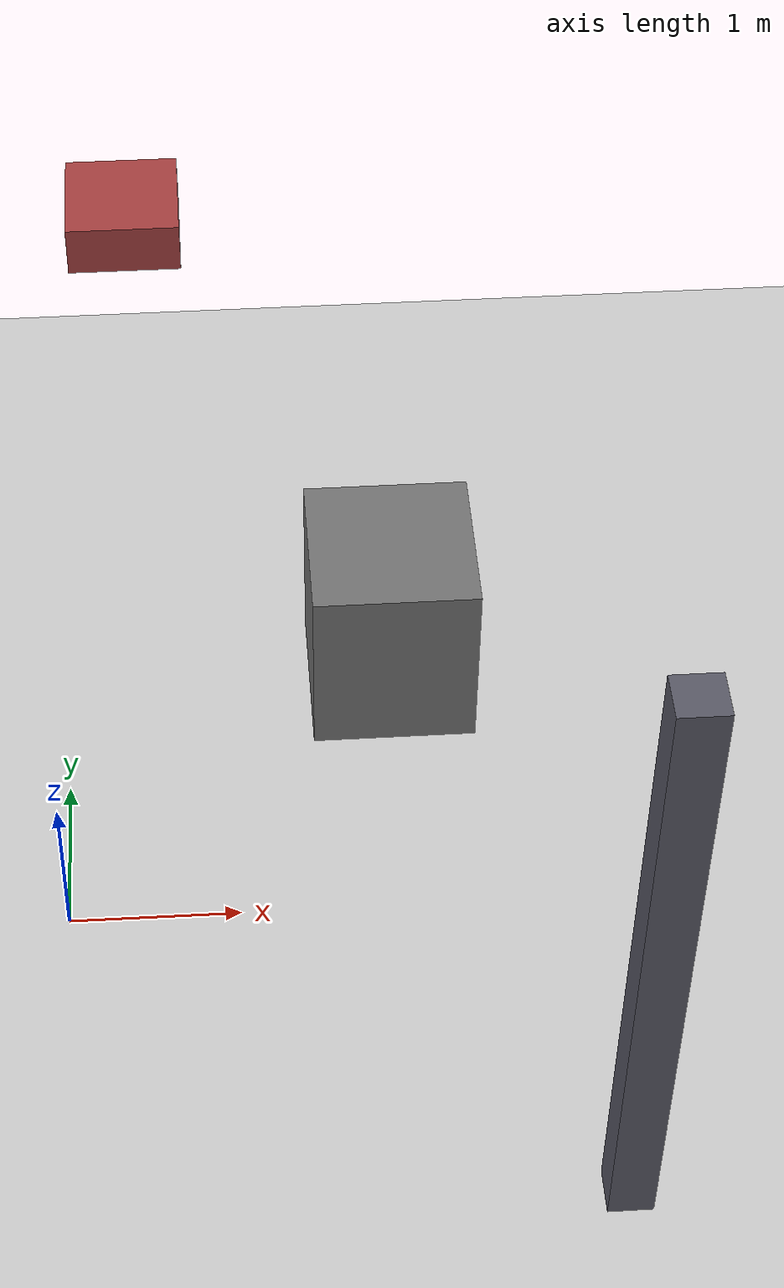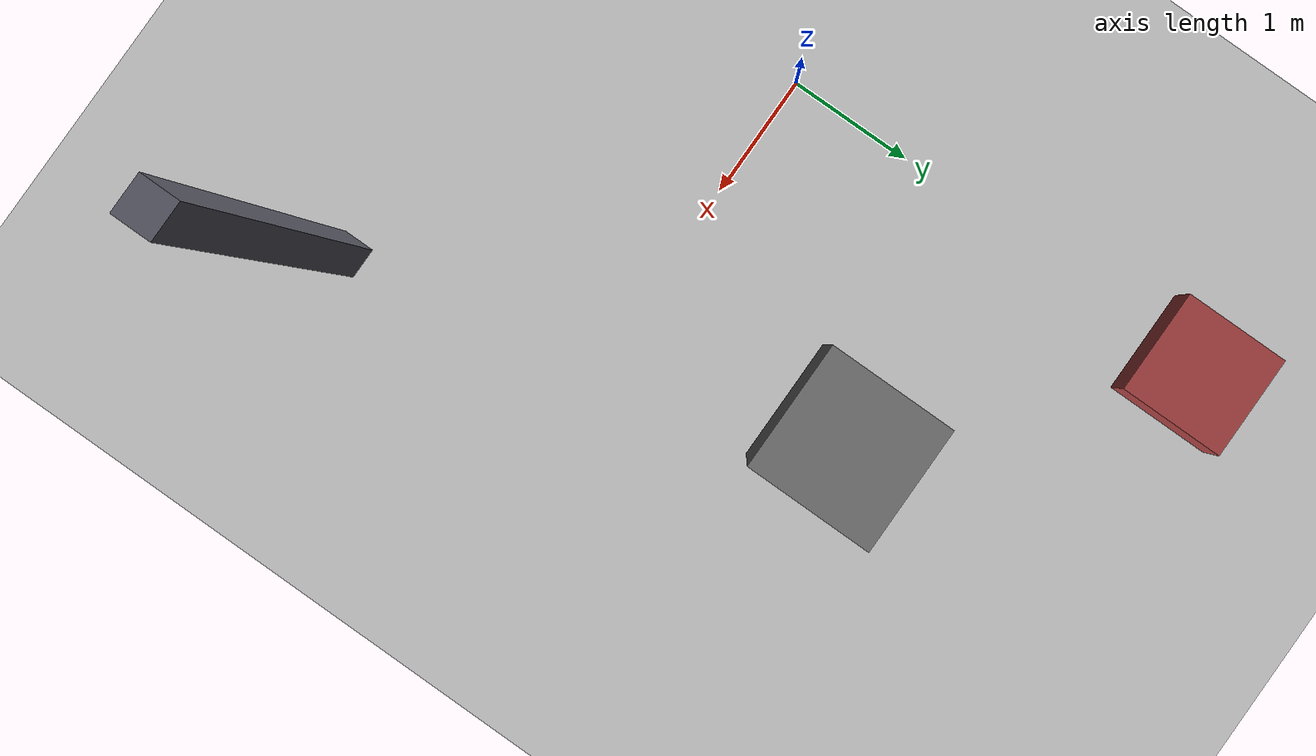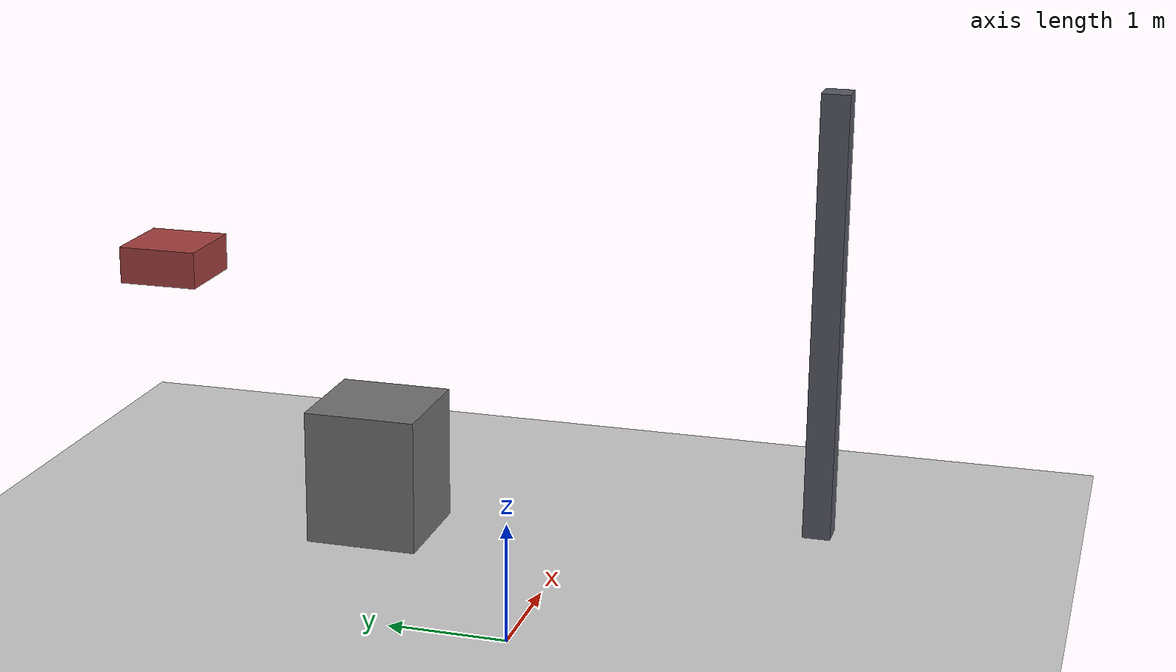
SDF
<?xml version="1.0"?>
<sdf version="1.5">
  <world name="lidar_clutter_light">
    <include>
      <uri>model://sun</uri>
    </include>
    <include>
      <uri>model://ground_plane</uri>
    </include>

    <model name="low_crate">
      <static>true</static>
      <pose>2.0 1.8 0.6 0 0 0</pose>
      <link name="link">
        <collision name="collision">
          <geometry><box><size>1.0 1.0 1.2</size></box></geometry>
        </collision>
        <visual name="visual">
          <geometry><box><size>1.0 1.0 1.2</size></box></geometry>
          <material><ambient>0.35 0.35 0.35 1</ambient><diffuse>0.45 0.45 0.45 1</diffuse></material>
        </visual>
      </link>
    </model>

    <model name="tall_pole">
      <static>true</static>
      <pose>3.0 -2.0 2.0 0 0 0</pose>
      <link name="link">
        <collision name="collision">
          <geometry><box><size>0.25 0.25 4.0</size></box></geometry>
        </collision>
        <visual name="visual">
          <geometry><box><size>0.25 0.25 4.0</size></box></geometry>
          <material><ambient>0.25 0.25 0.3 1</ambient><diffuse>0.35 0.35 0.4 1</diffuse></material>
        </visual>
      </link>
    </model>

    <model name="uav_sized_static_box">
      <static>true</static>
      <pose>0.5 3.0 2.8 0 0 0</pose>
      <link name="link">
        <collision name="collision">
          <geometry><box><size>0.65 0.65 0.30</size></box></geometry>
        </collision>
        <visual name="visual">
          <geometry><box><size>0.65 0.65 0.30</size></box></geometry>
          <material><ambient>0.5 0.2 0.2 1</ambient><diffuse>0.65 0.25 0.25 1</diffuse></material>
        </visual>
      </link>
    </model>

    <physics name="default_physics" default="0" type="ode">
      <gravity>0 0 -9.8066</gravity>
      <ode>
        <solver>
          <type>quick</type>
          <iters>10</iters>
          <sor>1.3</sor>
          <use_dynamic_moi_rescaling>0</use_dynamic_moi_rescaling>
        </solver>
        <constraints>
          <cfm>0</cfm>
          <erp>0.2</erp>
          <contact_max_correcting_vel>100</contact_max_correcting_vel>
          <contact_surface_layer>0.001</contact_surface_layer>
        </constraints>
      </ode>
      <max_step_size>0.004</max_step_size>
      <real_time_factor>1</real_time_factor>
      <real_time_update_rate>250</real_time_update_rate>
      <magnetic_field>6.0e-6 2.3e-5 -4.2e-5</magnetic_field>
    </physics>
  </world>
</sdf>
